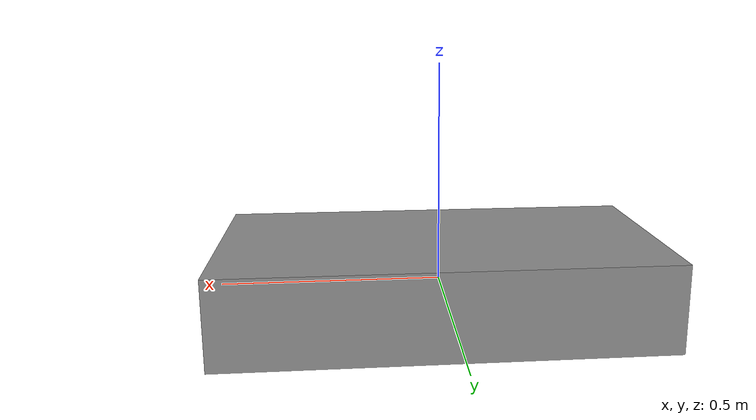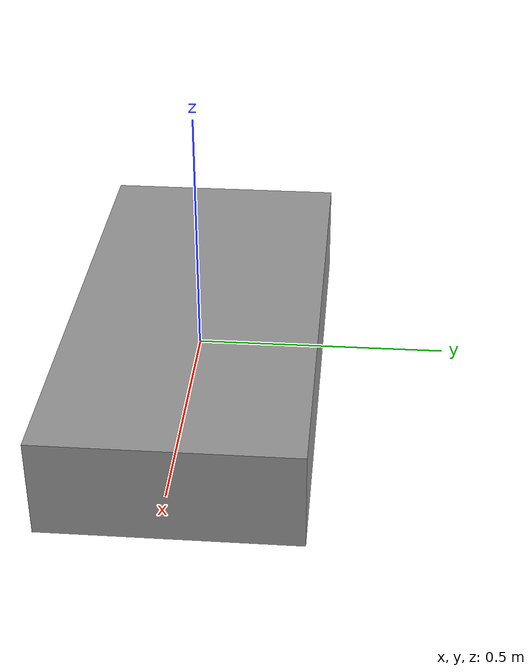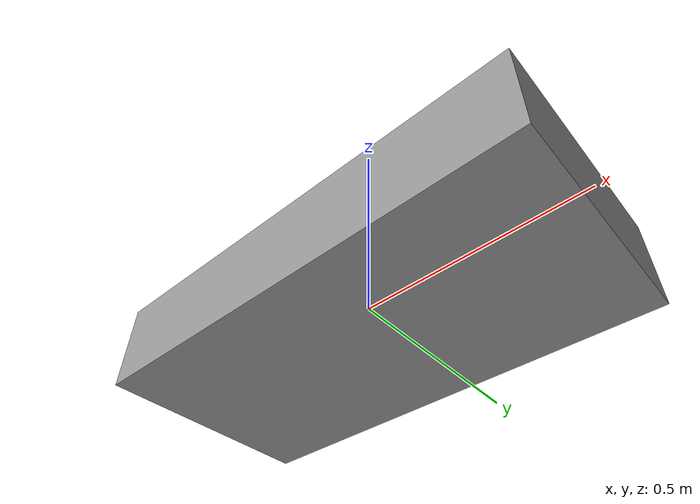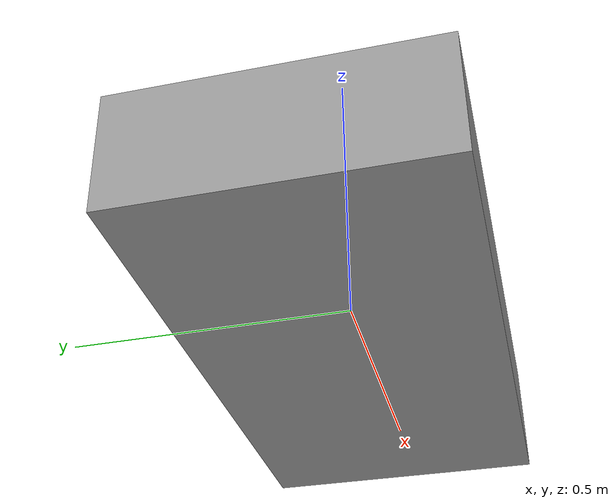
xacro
<?xml version="1.0"?>
<robot name="ackermann_bot" xmlns:xacro="http://ros.org/wiki/xacro">

  <xacro:property name="wheel_radius" value="0.1"/>
  <xacro:property name="wheel_width" value="0.05"/>
  <xacro:property name="chassis_length" value="1.0"/>
  <xacro:property name="chassis_width" value="0.5"/>
  <xacro:property name="chassis_height" value="0.2"/>
  <xacro:property name="wheelbase" value="0.8"/>
  <xacro:property name="track_width" value="0.5"/>

  <link name="base_link">
    <visual>
      <geometry>
        <box size="${chassis_length} ${chassis_width} ${chassis_height}"/>
      </geometry>
      <material name="grey"><color rgba="0.6 0.6 0.6 1"/></material>
    </visual>
    <collision>
      <geometry>
        <box size="${chassis_length} ${chassis_width} ${chassis_height}"/>
      </geometry>
    </collision>
    <inertial>
      <mass value="10"/>
      <inertia ixx="0.1" ixy="0.0" ixz="0.0" iyy="0.1" iyz="0.0" izz="0.1"/>
    </inertial>
  </link>

  <!-- FRONT LEFT -->
  <link name="front_left_steering_link"/>
  <joint name="front_left_steering_joint" type="revolute">
    <parent link="base_link"/>
    <child link="front_left_steering_link"/>
    <origin xyz="${wheelbase/2} ${track_width/2} ${-chassis_height/2}" rpy="0 0 0"/>
    <axis xyz="0 0 1"/>
    <limit effort="10" velocity="1.0" lower="-0.6" upper="0.6"/>
  </joint>

  <link name="front_left_wheel"/>
  <joint name="front_left_wheel_joint" type="continuous">
    <parent link="front_left_steering_link"/>
    <child link="front_left_wheel"/>
    <origin xyz="0 0 0" rpy="0 0 0"/>
    <axis xyz="0 1 0"/>
  </joint>

  <!-- FRONT RIGHT -->
  <link name="front_right_steering_link"/>
  <joint name="front_right_steering_joint" type="revolute">
    <parent link="base_link"/>
    <child link="front_right_steering_link"/>
    <origin xyz="${wheelbase/2} ${-track_width/2} ${-chassis_height/2}" rpy="0 0 0"/>
    <axis xyz="0 0 1"/>
    <limit effort="10" velocity="1.0" lower="-0.6" upper="0.6"/>
  </joint>

  <link name="front_right_wheel"/>
  <joint name="front_right_wheel_joint" type="continuous">
    <parent link="front_right_steering_link"/>
    <child link="front_right_wheel"/>
    <origin xyz="0 0 0" rpy="0 0 0"/>
    <axis xyz="0 1 0"/>
  </joint>

  <!-- REAR LEFT -->
  <link name="rear_left_wheel"/>
  <joint name="rear_left_wheel_joint" type="continuous">
    <parent link="base_link"/>
    <child link="rear_left_wheel"/>
    <origin xyz="${-wheelbase/2} ${track_width/2} ${-chassis_height/2}" rpy="0 0 0"/>
    <axis xyz="0 1 0"/>
  </joint>

  <!-- REAR RIGHT -->
  <link name="rear_right_wheel"/>
  <joint name="rear_right_wheel_joint" type="continuous">
    <parent link="base_link"/>
    <child link="rear_right_wheel"/>
    <origin xyz="${-wheelbase/2} ${-track_width/2} ${-chassis_height/2}" rpy="0 0 0"/>
    <axis xyz="0 1 0"/>
  </joint>

  <gazebo>
    <plugin name="gazebo_ros2_control" filename="libgazebo_ros2_control.so"/>
  </gazebo>

  <!-- Transmissions -->
  <transmission name="front_left_wheel_trans">
    <type>transmission_interface/SimpleTransmission</type>
    <joint name="front_left_wheel_joint">
      <hardwareInterface>hardware_interface/VelocityJointInterface</hardwareInterface>
    </joint>
    <actuator name="fl_wheel_motor">
      <mechanicalReduction>1</mechanicalReduction>
    </actuator>
  </transmission>

  <transmission name="front_right_wheel_trans">
    <type>transmission_interface/SimpleTransmission</type>
    <joint name="front_right_wheel_joint">
      <hardwareInterface>hardware_interface/VelocityJointInterface</hardwareInterface>
    </joint>
    <actuator name="fr_wheel_motor">
      <mechanicalReduction>1</mechanicalReduction>
    </actuator>
  </transmission>

  <transmission name="rear_left_wheel_trans">
    <type>transmission_interface/SimpleTransmission</type>
    <joint name="rear_left_wheel_joint">
      <hardwareInterface>hardware_interface/VelocityJointInterface</hardwareInterface>
    </joint>
    <actuator name="rl_wheel_motor">
      <mechanicalReduction>1</mechanicalReduction>
    </actuator>
  </transmission>

  <transmission name="rear_right_wheel_trans">
    <type>transmission_interface/SimpleTransmission</type>
    <joint name="rear_right_wheel_joint">
      <hardwareInterface>hardware_interface/VelocityJointInterface</hardwareInterface>
    </joint>
    <actuator name="rr_wheel_motor">
      <mechanicalReduction>1</mechanicalReduction>
    </actuator>
  </transmission>

  <transmission name="front_left_steering_trans">
    <type>transmission_interface/SimpleTransmission</type>
    <joint name="front_left_steering_joint">
      <hardwareInterface>hardware_interface/PositionJointInterface</hardwareInterface>
    </joint>
    <actuator name="fl_steering_motor">
      <mechanicalReduction>1</mechanicalReduction>
    </actuator>
  </transmission>

  <transmission name="front_right_steering_trans">
    <type>transmission_interface/SimpleTransmission</type>
    <joint name="front_right_steering_joint">
      <hardwareInterface>hardware_interface/PositionJointInterface</hardwareInterface>
    </joint>
    <actuator name="fr_steering_motor">
      <mechanicalReduction>1</mechanicalReduction>
    </actuator>
  </transmission>

</robot>
